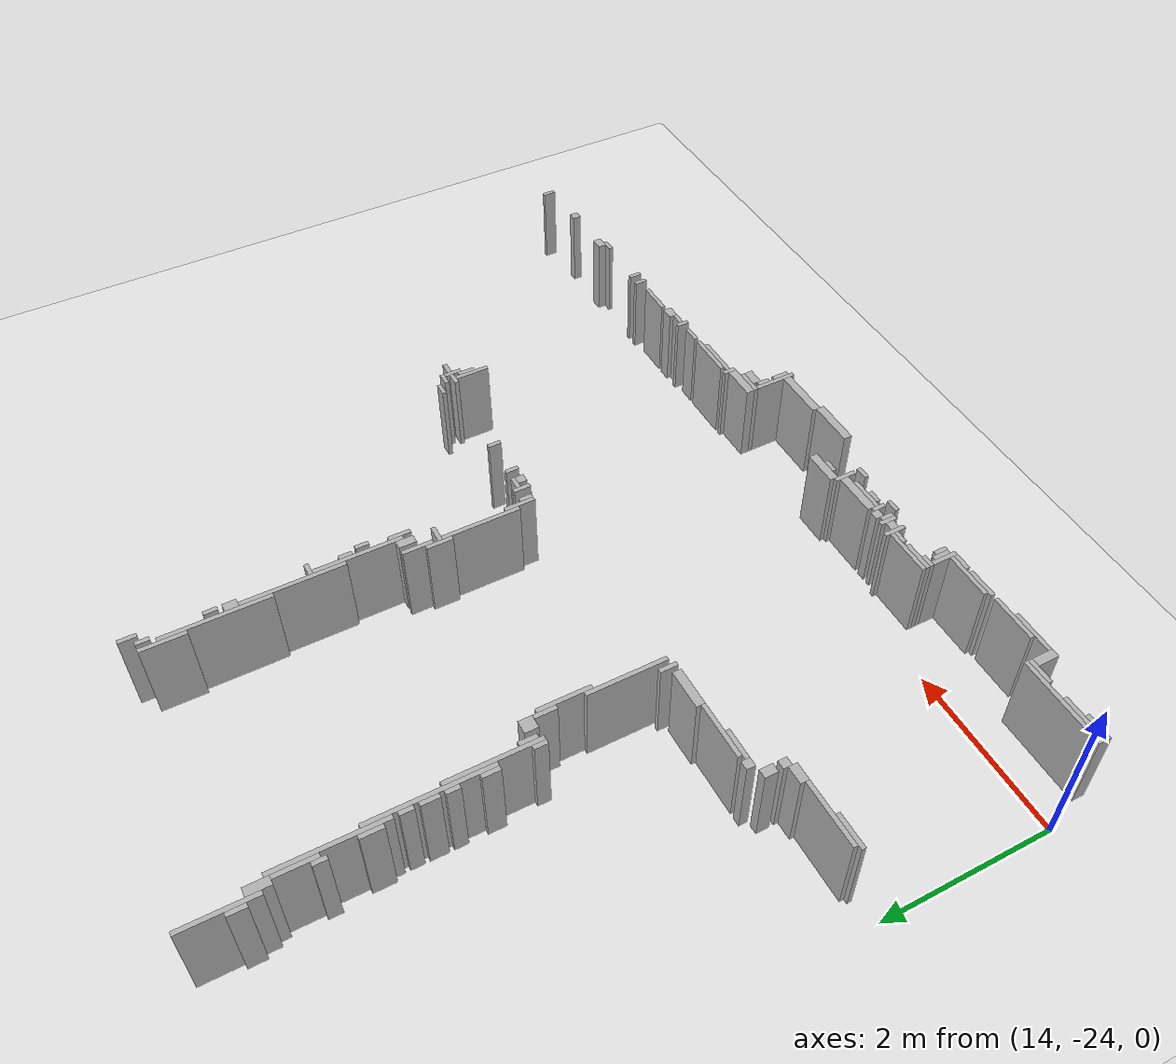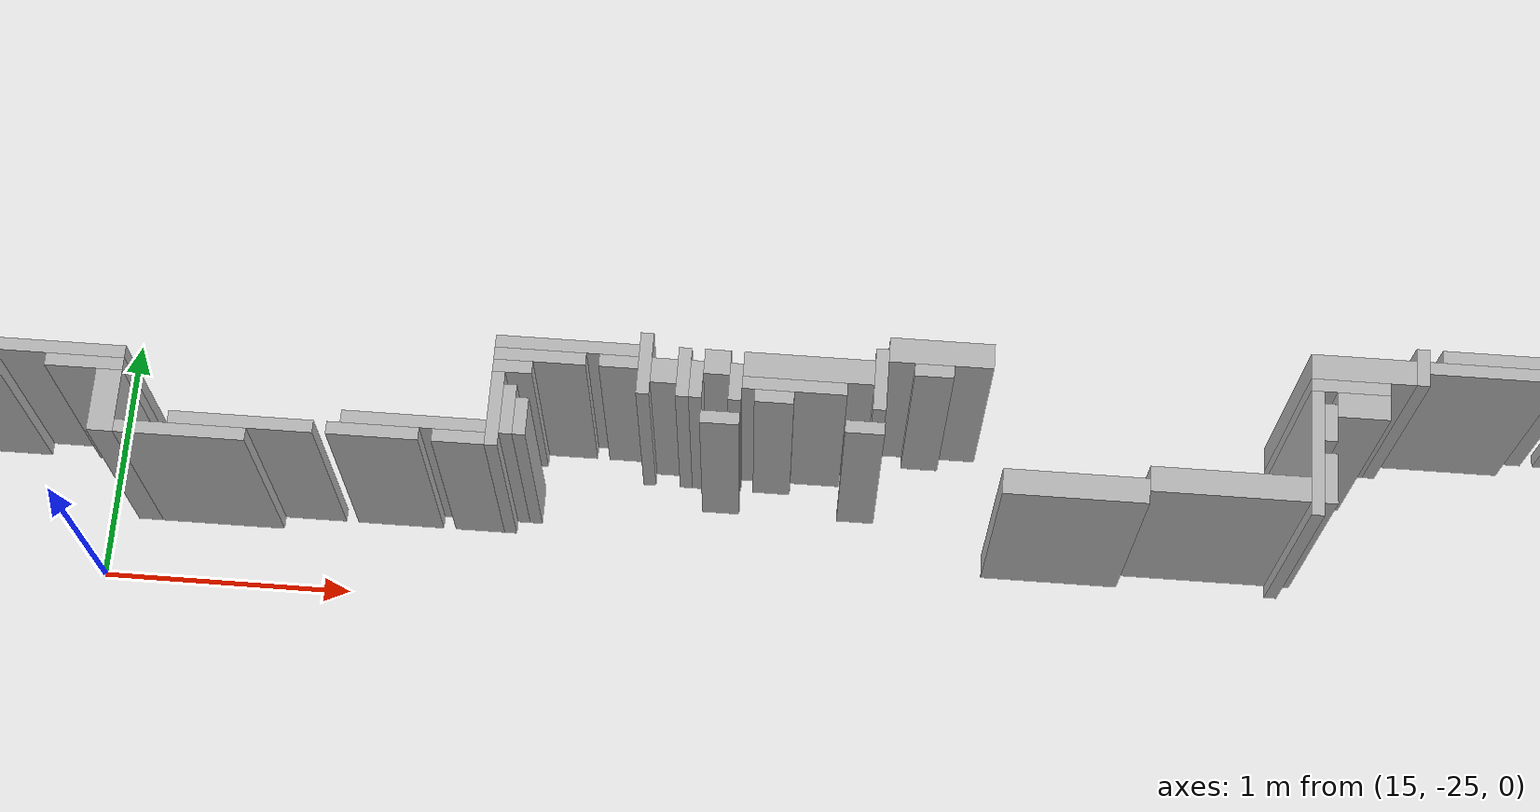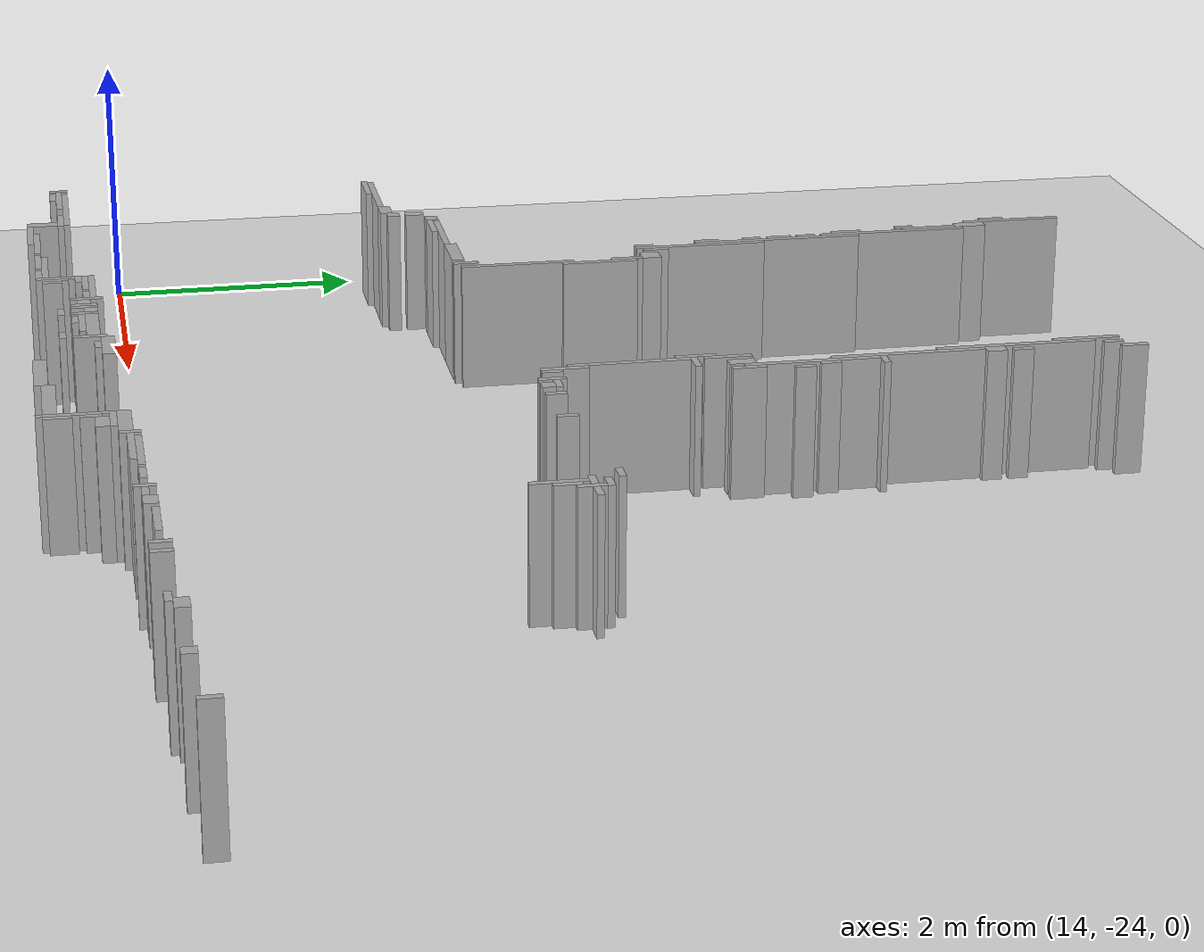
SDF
<sdf version="1.8">
 <world name="building">
  <model name="ground_plane">
   <static>true</static>
   <link name="link">
    <collision name="c"><geometry><plane><normal>0 0 1</normal><size>200 200</size></plane></geometry></collision>
    <visual name="v">
     <geometry><plane><normal>0 0 1</normal><size>200 200</size></plane></geometry>
     <material><ambient>0.9 0.9 0.9 1</ambient><diffuse>0.9 0.9 0.9 1</diffuse></material>
    </visual>
   </link>
  </model>
  <model name="walls">
   <static>true</static>
   <link name="wall_678">
    <pose>16.375 -16.750 0.500 0 0 0</pose>
    <collision name="c"><geometry><box><size>0.050 0.800 1.000</size></box></geometry></collision>
    <visual name="v">
     <geometry><box><size>0.050 0.800 1.000</size></box></geometry>
     <material><ambient>0.6 0.6 0.6 1</ambient><diffuse>0.7 0.7 0.7 1</diffuse></material>
    </visual>
   </link>
   <link name="wall_682">
    <pose>19.575 -16.850 0.500 0 0 0</pose>
    <collision name="c"><geometry><box><size>0.050 0.200 1.000</size></box></geometry></collision>
    <visual name="v">
     <geometry><box><size>0.050 0.200 1.000</size></box></geometry>
     <material><ambient>0.6 0.6 0.6 1</ambient><diffuse>0.7 0.7 0.7 1</diffuse></material>
    </visual>
   </link>
   <link name="wall_683">
    <pose>16.325 -16.900 0.500 0 0 0</pose>
    <collision name="c"><geometry><box><size>0.050 0.200 1.000</size></box></geometry></collision>
    <visual name="v">
     <geometry><box><size>0.050 0.200 1.000</size></box></geometry>
     <material><ambient>0.6 0.6 0.6 1</ambient><diffuse>0.7 0.7 0.7 1</diffuse></material>
    </visual>
   </link>
   <link name="wall_684">
    <pose>19.375 -17.150 0.500 0 0 0</pose>
    <collision name="c"><geometry><box><size>0.050 0.500 1.000</size></box></geometry></collision>
    <visual name="v">
     <geometry><box><size>0.050 0.500 1.000</size></box></geometry>
     <material><ambient>0.6 0.6 0.6 1</ambient><diffuse>0.7 0.7 0.7 1</diffuse></material>
    </visual>
   </link>
   <link name="wall_685">
    <pose>19.475 -16.975 0.500 0 0 0</pose>
    <collision name="c"><geometry><box><size>0.050 0.150 1.000</size></box></geometry></collision>
    <visual name="v">
     <geometry><box><size>0.050 0.150 1.000</size></box></geometry>
     <material><ambient>0.6 0.6 0.6 1</ambient><diffuse>0.7 0.7 0.7 1</diffuse></material>
    </visual>
   </link>
   <link name="wall_687">
    <pose>16.450 -17.125 0.500 0 0 0</pose>
    <collision name="c"><geometry><box><size>0.100 0.250 1.000</size></box></geometry></collision>
    <visual name="v">
     <geometry><box><size>0.100 0.250 1.000</size></box></geometry>
     <material><ambient>0.6 0.6 0.6 1</ambient><diffuse>0.7 0.7 0.7 1</diffuse></material>
    </visual>
   </link>
   <link name="wall_688">
    <pose>19.425 -17.700 0.500 0 0 0</pose>
    <collision name="c"><geometry><box><size>0.050 1.200 1.000</size></box></geometry></collision>
    <visual name="v">
     <geometry><box><size>0.050 1.200 1.000</size></box></geometry>
     <material><ambient>0.6 0.6 0.6 1</ambient><diffuse>0.7 0.7 0.7 1</diffuse></material>
    </visual>
   </link>
   <link name="wall_689">
    <pose>16.525 -17.800 0.500 0 0 0</pose>
    <collision name="c"><geometry><box><size>0.050 1.200 1.000</size></box></geometry></collision>
    <visual name="v">
     <geometry><box><size>0.050 1.200 1.000</size></box></geometry>
     <material><ambient>0.6 0.6 0.6 1</ambient><diffuse>0.7 0.7 0.7 1</diffuse></material>
    </visual>
   </link>
   <link name="wall_690">
    <pose>16.475 -17.475 0.500 0 0 0</pose>
    <collision name="c"><geometry><box><size>0.050 0.450 1.000</size></box></geometry></collision>
    <visual name="v">
     <geometry><box><size>0.050 0.450 1.000</size></box></geometry>
     <material><ambient>0.6 0.6 0.6 1</ambient><diffuse>0.7 0.7 0.7 1</diffuse></material>
    </visual>
   </link>
   <link name="wall_692">
    <pose>16.425 -17.675 0.500 0 0 0</pose>
    <collision name="c"><geometry><box><size>0.050 0.150 1.000</size></box></geometry></collision>
    <visual name="v">
     <geometry><box><size>0.050 0.150 1.000</size></box></geometry>
     <material><ambient>0.6 0.6 0.6 1</ambient><diffuse>0.7 0.7 0.7 1</diffuse></material>
    </visual>
   </link>
   <link name="wall_693">
    <pose>19.525 -17.675 0.500 0 0 0</pose>
    <collision name="c"><geometry><box><size>0.050 0.150 1.000</size></box></geometry></collision>
    <visual name="v">
     <geometry><box><size>0.050 0.150 1.000</size></box></geometry>
     <material><ambient>0.6 0.6 0.6 1</ambient><diffuse>0.7 0.7 0.7 1</diffuse></material>
    </visual>
   </link>
   <link name="wall_695">
    <pose>19.500 -17.875 0.500 0 0 0</pose>
    <collision name="c"><geometry><box><size>0.100 0.150 1.000</size></box></geometry></collision>
    <visual name="v">
     <geometry><box><size>0.100 0.150 1.000</size></box></geometry>
     <material><ambient>0.6 0.6 0.6 1</ambient><diffuse>0.7 0.7 0.7 1</diffuse></material>
    </visual>
   </link>
   <link name="wall_696">
    <pose>19.475 -18.525 0.500 0 0 0</pose>
    <collision name="c"><geometry><box><size>0.050 1.150 1.000</size></box></geometry></collision>
    <visual name="v">
     <geometry><box><size>0.050 1.150 1.000</size></box></geometry>
     <material><ambient>0.6 0.6 0.6 1</ambient><diffuse>0.7 0.7 0.7 1</diffuse></material>
    </visual>
   </link>
   <link name="wall_697">
    <pose>16.475 -18.175 0.500 0 0 0</pose>
    <collision name="c"><geometry><box><size>0.050 0.250 1.000</size></box></geometry></collision>
    <visual name="v">
     <geometry><box><size>0.050 0.250 1.000</size></box></geometry>
     <material><ambient>0.6 0.6 0.6 1</ambient><diffuse>0.7 0.7 0.7 1</diffuse></material>
    </visual>
   </link>
   <link name="wall_699">
    <pose>16.575 -18.775 0.500 0 0 0</pose>
    <collision name="c"><geometry><box><size>0.050 1.350 1.000</size></box></geometry></collision>
    <visual name="v">
     <geometry><box><size>0.050 1.350 1.000</size></box></geometry>
     <material><ambient>0.6 0.6 0.6 1</ambient><diffuse>0.7 0.7 0.7 1</diffuse></material>
    </visual>
   </link>
   <link name="wall_703">
    <pose>16.525 -18.525 0.500 0 0 0</pose>
    <collision name="c"><geometry><box><size>0.050 0.150 1.000</size></box></geometry></collision>
    <visual name="v">
     <geometry><box><size>0.050 0.150 1.000</size></box></geometry>
     <material><ambient>0.6 0.6 0.6 1</ambient><diffuse>0.7 0.7 0.7 1</diffuse></material>
    </visual>
   </link>
   <link name="wall_704">
    <pose>16.525 -18.750 0.500 0 0 0</pose>
    <collision name="c"><geometry><box><size>0.050 0.200 1.000</size></box></geometry></collision>
    <visual name="v">
     <geometry><box><size>0.050 0.200 1.000</size></box></geometry>
     <material><ambient>0.6 0.6 0.6 1</ambient><diffuse>0.7 0.7 0.7 1</diffuse></material>
    </visual>
   </link>
   <link name="wall_706">
    <pose>19.575 -18.725 0.500 0 0 0</pose>
    <collision name="c"><geometry><box><size>0.150 0.050 1.000</size></box></geometry></collision>
    <visual name="v">
     <geometry><box><size>0.150 0.050 1.000</size></box></geometry>
     <material><ambient>0.6 0.6 0.6 1</ambient><diffuse>0.7 0.7 0.7 1</diffuse></material>
    </visual>
   </link>
   <link name="wall_707">
    <pose>19.525 -19.250 0.500 0 0 0</pose>
    <collision name="c"><geometry><box><size>0.050 1.000 1.000</size></box></geometry></collision>
    <visual name="v">
     <geometry><box><size>0.050 1.000 1.000</size></box></geometry>
     <material><ambient>0.6 0.6 0.6 1</ambient><diffuse>0.7 0.7 0.7 1</diffuse></material>
    </visual>
   </link>
   <link name="wall_708">
    <pose>16.525 -18.975 0.500 0 0 0</pose>
    <collision name="c"><geometry><box><size>0.050 0.150 1.000</size></box></geometry></collision>
    <visual name="v">
     <geometry><box><size>0.050 0.150 1.000</size></box></geometry>
     <material><ambient>0.6 0.6 0.6 1</ambient><diffuse>0.7 0.7 0.7 1</diffuse></material>
    </visual>
   </link>
   <link name="wall_709">
    <pose>16.625 -19.425 0.500 0 0 0</pose>
    <collision name="c"><geometry><box><size>0.050 1.050 1.000</size></box></geometry></collision>
    <visual name="v">
     <geometry><box><size>0.050 1.050 1.000</size></box></geometry>
     <material><ambient>0.6 0.6 0.6 1</ambient><diffuse>0.7 0.7 0.7 1</diffuse></material>
    </visual>
   </link>
   <link name="wall_710">
    <pose>19.575 -19.125 0.500 0 0 0</pose>
    <collision name="c"><geometry><box><size>0.050 0.150 1.000</size></box></geometry></collision>
    <visual name="v">
     <geometry><box><size>0.050 0.150 1.000</size></box></geometry>
     <material><ambient>0.6 0.6 0.6 1</ambient><diffuse>0.7 0.7 0.7 1</diffuse></material>
    </visual>
   </link>
   <link name="wall_712">
    <pose>16.525 -19.350 0.500 0 0 0</pose>
    <collision name="c"><geometry><box><size>0.050 0.200 1.000</size></box></geometry></collision>
    <visual name="v">
     <geometry><box><size>0.050 0.200 1.000</size></box></geometry>
     <material><ambient>0.6 0.6 0.6 1</ambient><diffuse>0.7 0.7 0.7 1</diffuse></material>
    </visual>
   </link>
   <link name="wall_713">
    <pose>19.625 -19.325 0.500 0 0 0</pose>
    <collision name="c"><geometry><box><size>0.050 0.150 1.000</size></box></geometry></collision>
    <visual name="v">
     <geometry><box><size>0.050 0.150 1.000</size></box></geometry>
     <material><ambient>0.6 0.6 0.6 1</ambient><diffuse>0.7 0.7 0.7 1</diffuse></material>
    </visual>
   </link>
   <link name="wall_716">
    <pose>19.575 -19.725 0.500 0 0 0</pose>
    <collision name="c"><geometry><box><size>0.050 0.250 1.000</size></box></geometry></collision>
    <visual name="v">
     <geometry><box><size>0.050 0.250 1.000</size></box></geometry>
     <material><ambient>0.6 0.6 0.6 1</ambient><diffuse>0.7 0.7 0.7 1</diffuse></material>
    </visual>
   </link>
   <link name="wall_719">
    <pose>19.325 -19.825 0.500 0 0 0</pose>
    <collision name="c"><geometry><box><size>0.050 0.350 1.000</size></box></geometry></collision>
    <visual name="v">
     <geometry><box><size>0.050 0.350 1.000</size></box></geometry>
     <material><ambient>0.6 0.6 0.6 1</ambient><diffuse>0.7 0.7 0.7 1</diffuse></material>
    </visual>
   </link>
   <link name="wall_720">
    <pose>19.450 -19.750 0.500 0 0 0</pose>
    <collision name="c"><geometry><box><size>0.100 0.200 1.000</size></box></geometry></collision>
    <visual name="v">
     <geometry><box><size>0.100 0.200 1.000</size></box></geometry>
     <material><ambient>0.6 0.6 0.6 1</ambient><diffuse>0.7 0.7 0.7 1</diffuse></material>
    </visual>
   </link>
   <link name="wall_721">
    <pose>16.675 -19.800 0.500 0 0 0</pose>
    <collision name="c"><geometry><box><size>0.050 0.200 1.000</size></box></geometry></collision>
    <visual name="v">
     <geometry><box><size>0.050 0.200 1.000</size></box></geometry>
     <material><ambient>0.6 0.6 0.6 1</ambient><diffuse>0.7 0.7 0.7 1</diffuse></material>
    </visual>
   </link>
   <link name="wall_722">
    <pose>16.575 -19.875 0.500 0 0 0</pose>
    <collision name="c"><geometry><box><size>0.050 0.150 1.000</size></box></geometry></collision>
    <visual name="v">
     <geometry><box><size>0.050 0.150 1.000</size></box></geometry>
     <material><ambient>0.6 0.6 0.6 1</ambient><diffuse>0.7 0.7 0.7 1</diffuse></material>
    </visual>
   </link>
   <link name="wall_723">
    <pose>16.825 -19.875 0.500 0 0 0</pose>
    <collision name="c"><geometry><box><size>0.150 0.150 1.000</size></box></geometry></collision>
    <visual name="v">
     <geometry><box><size>0.150 0.150 1.000</size></box></geometry>
     <material><ambient>0.6 0.6 0.6 1</ambient><diffuse>0.7 0.7 0.7 1</diffuse></material>
    </visual>
   </link>
   <link name="wall_724">
    <pose>19.275 -20.050 0.500 0 0 0</pose>
    <collision name="c"><geometry><box><size>0.050 0.300 1.000</size></box></geometry></collision>
    <visual name="v">
     <geometry><box><size>0.050 0.300 1.000</size></box></geometry>
     <material><ambient>0.6 0.6 0.6 1</ambient><diffuse>0.7 0.7 0.7 1</diffuse></material>
    </visual>
   </link>
   <link name="wall_725">
    <pose>16.875 -20.075 0.500 0 0 0</pose>
    <collision name="c"><geometry><box><size>0.050 0.250 1.000</size></box></geometry></collision>
    <visual name="v">
     <geometry><box><size>0.050 0.250 1.000</size></box></geometry>
     <material><ambient>0.6 0.6 0.6 1</ambient><diffuse>0.7 0.7 0.7 1</diffuse></material>
    </visual>
   </link>
   <link name="wall_726">
    <pose>16.925 -20.300 0.500 0 0 0</pose>
    <collision name="c"><geometry><box><size>0.050 0.600 1.000</size></box></geometry></collision>
    <visual name="v">
     <geometry><box><size>0.050 0.600 1.000</size></box></geometry>
     <material><ambient>0.6 0.6 0.6 1</ambient><diffuse>0.7 0.7 0.7 1</diffuse></material>
    </visual>
   </link>
   <link name="wall_727">
    <pose>19.400 -20.075 0.500 0 0 0</pose>
    <collision name="c"><geometry><box><size>0.200 0.050 1.000</size></box></geometry></collision>
    <visual name="v">
     <geometry><box><size>0.200 0.050 1.000</size></box></geometry>
     <material><ambient>0.6 0.6 0.6 1</ambient><diffuse>0.7 0.7 0.7 1</diffuse></material>
    </visual>
   </link>
   <link name="wall_728">
    <pose>19.325 -20.550 0.500 0 0 0</pose>
    <collision name="c"><geometry><box><size>0.050 0.900 1.000</size></box></geometry></collision>
    <visual name="v">
     <geometry><box><size>0.050 0.900 1.000</size></box></geometry>
     <material><ambient>0.6 0.6 0.6 1</ambient><diffuse>0.7 0.7 0.7 1</diffuse></material>
    </visual>
   </link>
   <link name="wall_730">
    <pose>16.875 -20.950 0.500 0 0 0</pose>
    <collision name="c"><geometry><box><size>0.050 0.900 1.000</size></box></geometry></collision>
    <visual name="v">
     <geometry><box><size>0.050 0.900 1.000</size></box></geometry>
     <material><ambient>0.6 0.6 0.6 1</ambient><diffuse>0.7 0.7 0.7 1</diffuse></material>
    </visual>
   </link>
   <link name="wall_732">
    <pose>19.375 -21.025 0.500 0 0 0</pose>
    <collision name="c"><geometry><box><size>0.050 0.350 1.000</size></box></geometry></collision>
    <visual name="v">
     <geometry><box><size>0.050 0.350 1.000</size></box></geometry>
     <material><ambient>0.6 0.6 0.6 1</ambient><diffuse>0.7 0.7 0.7 1</diffuse></material>
    </visual>
   </link>
   <link name="wall_737">
    <pose>21.425 -21.025 0.500 0 0 0</pose>
    <collision name="c"><geometry><box><size>0.150 0.050 1.000</size></box></geometry></collision>
    <visual name="v">
     <geometry><box><size>0.150 0.050 1.000</size></box></geometry>
     <material><ambient>0.6 0.6 0.6 1</ambient><diffuse>0.7 0.7 0.7 1</diffuse></material>
    </visual>
   </link>
   <link name="wall_739">
    <pose>19.425 -21.125 0.500 0 0 0</pose>
    <collision name="c"><geometry><box><size>0.050 0.150 1.000</size></box></geometry></collision>
    <visual name="v">
     <geometry><box><size>0.050 0.150 1.000</size></box></geometry>
     <material><ambient>0.6 0.6 0.6 1</ambient><diffuse>0.7 0.7 0.7 1</diffuse></material>
    </visual>
   </link>
   <link name="wall_740">
    <pose>19.575 -21.150 0.500 0 0 0</pose>
    <collision name="c"><geometry><box><size>0.050 0.200 1.000</size></box></geometry></collision>
    <visual name="v">
     <geometry><box><size>0.050 0.200 1.000</size></box></geometry>
     <material><ambient>0.6 0.6 0.6 1</ambient><diffuse>0.7 0.7 0.7 1</diffuse></material>
    </visual>
   </link>
   <link name="wall_742">
    <pose>19.675 -21.125 0.500 0 0 0</pose>
    <collision name="c"><geometry><box><size>0.150 0.050 1.000</size></box></geometry></collision>
    <visual name="v">
     <geometry><box><size>0.150 0.050 1.000</size></box></geometry>
     <material><ambient>0.6 0.6 0.6 1</ambient><diffuse>0.7 0.7 0.7 1</diffuse></material>
    </visual>
   </link>
   <link name="wall_743">
    <pose>19.875 -21.175 0.500 0 0 0</pose>
    <collision name="c"><geometry><box><size>0.050 0.150 1.000</size></box></geometry></collision>
    <visual name="v">
     <geometry><box><size>0.050 0.150 1.000</size></box></geometry>
     <material><ambient>0.6 0.6 0.6 1</ambient><diffuse>0.7 0.7 0.7 1</diffuse></material>
    </visual>
   </link>
   <link name="wall_744">
    <pose>20.325 -21.175 0.500 0 0 0</pose>
    <collision name="c"><geometry><box><size>0.050 0.150 1.000</size></box></geometry></collision>
    <visual name="v">
     <geometry><box><size>0.050 0.150 1.000</size></box></geometry>
     <material><ambient>0.6 0.6 0.6 1</ambient><diffuse>0.7 0.7 0.7 1</diffuse></material>
    </visual>
   </link>
   <link name="wall_745">
    <pose>21.575 -21.125 0.500 0 0 0</pose>
    <collision name="c"><geometry><box><size>0.150 0.050 1.000</size></box></geometry></collision>
    <visual name="v">
     <geometry><box><size>0.150 0.050 1.000</size></box></geometry>
     <material><ambient>0.6 0.6 0.6 1</ambient><diffuse>0.7 0.7 0.7 1</diffuse></material>
    </visual>
   </link>
   <link name="wall_747">
    <pose>19.700 -21.200 0.500 0 0 0</pose>
    <collision name="c"><geometry><box><size>0.100 0.100 1.000</size></box></geometry></collision>
    <visual name="v">
     <geometry><box><size>0.100 0.100 1.000</size></box></geometry>
     <material><ambient>0.6 0.6 0.6 1</ambient><diffuse>0.7 0.7 0.7 1</diffuse></material>
    </visual>
   </link>
   <link name="wall_748">
    <pose>21.625 -21.250 0.500 0 0 0</pose>
    <collision name="c"><geometry><box><size>0.050 0.200 1.000</size></box></geometry></collision>
    <visual name="v">
     <geometry><box><size>0.050 0.200 1.000</size></box></geometry>
     <material><ambient>0.6 0.6 0.6 1</ambient><diffuse>0.7 0.7 0.7 1</diffuse></material>
    </visual>
   </link>
   <link name="wall_752">
    <pose>21.525 -21.225 0.500 0 0 0</pose>
    <collision name="c"><geometry><box><size>0.150 0.050 1.000</size></box></geometry></collision>
    <visual name="v">
     <geometry><box><size>0.150 0.050 1.000</size></box></geometry>
     <material><ambient>0.6 0.6 0.6 1</ambient><diffuse>0.7 0.7 0.7 1</diffuse></material>
    </visual>
   </link>
   <link name="wall_753">
    <pose>21.725 -21.225 0.500 0 0 0</pose>
    <collision name="c"><geometry><box><size>0.150 0.050 1.000</size></box></geometry></collision>
    <visual name="v">
     <geometry><box><size>0.150 0.050 1.000</size></box></geometry>
     <material><ambient>0.6 0.6 0.6 1</ambient><diffuse>0.7 0.7 0.7 1</diffuse></material>
    </visual>
   </link>
   <link name="wall_754">
    <pose>16.775 -21.350 0.500 0 0 0</pose>
    <collision name="c"><geometry><box><size>0.050 0.200 1.000</size></box></geometry></collision>
    <visual name="v">
     <geometry><box><size>0.050 0.200 1.000</size></box></geometry>
     <material><ambient>0.6 0.6 0.6 1</ambient><diffuse>0.7 0.7 0.7 1</diffuse></material>
    </visual>
   </link>
   <link name="wall_755">
    <pose>21.525 -21.450 0.500 0 0 0</pose>
    <collision name="c"><geometry><box><size>0.050 0.400 1.000</size></box></geometry></collision>
    <visual name="v">
     <geometry><box><size>0.050 0.400 1.000</size></box></geometry>
     <material><ambient>0.6 0.6 0.6 1</ambient><diffuse>0.7 0.7 0.7 1</diffuse></material>
    </visual>
   </link>
   <link name="wall_756">
    <pose>21.575 -21.400 0.500 0 0 0</pose>
    <collision name="c"><geometry><box><size>0.050 0.200 1.000</size></box></geometry></collision>
    <visual name="v">
     <geometry><box><size>0.050 0.200 1.000</size></box></geometry>
     <material><ambient>0.6 0.6 0.6 1</ambient><diffuse>0.7 0.7 0.7 1</diffuse></material>
    </visual>
   </link>
   <link name="wall_757">
    <pose>16.475 -21.400 0.500 0 0 0</pose>
    <collision name="c"><geometry><box><size>0.450 0.100 1.000</size></box></geometry></collision>
    <visual name="v">
     <geometry><box><size>0.450 0.100 1.000</size></box></geometry>
     <material><ambient>0.6 0.6 0.6 1</ambient><diffuse>0.7 0.7 0.7 1</diffuse></material>
    </visual>
   </link>
   <link name="wall_758">
    <pose>15.500 -21.450 0.500 0 0 0</pose>
    <collision name="c"><geometry><box><size>0.100 0.100 1.000</size></box></geometry></collision>
    <visual name="v">
     <geometry><box><size>0.100 0.100 1.000</size></box></geometry>
     <material><ambient>0.6 0.6 0.6 1</ambient><diffuse>0.7 0.7 0.7 1</diffuse></material>
    </visual>
   </link>
   <link name="wall_759">
    <pose>15.925 -21.425 0.500 0 0 0</pose>
    <collision name="c"><geometry><box><size>0.650 0.050 1.000</size></box></geometry></collision>
    <visual name="v">
     <geometry><box><size>0.650 0.050 1.000</size></box></geometry>
     <material><ambient>0.6 0.6 0.6 1</ambient><diffuse>0.7 0.7 0.7 1</diffuse></material>
    </visual>
   </link>
   <link name="wall_760">
    <pose>15.725 -21.475 0.500 0 0 0</pose>
    <collision name="c"><geometry><box><size>0.350 0.050 1.000</size></box></geometry></collision>
    <visual name="v">
     <geometry><box><size>0.350 0.050 1.000</size></box></geometry>
     <material><ambient>0.6 0.6 0.6 1</ambient><diffuse>0.7 0.7 0.7 1</diffuse></material>
    </visual>
   </link>
   <link name="wall_761">
    <pose>15.350 -21.575 0.500 0 0 0</pose>
    <collision name="c"><geometry><box><size>0.100 0.150 1.000</size></box></geometry></collision>
    <visual name="v">
     <geometry><box><size>0.100 0.150 1.000</size></box></geometry>
     <material><ambient>0.6 0.6 0.6 1</ambient><diffuse>0.7 0.7 0.7 1</diffuse></material>
    </visual>
   </link>
   <link name="wall_765">
    <pose>15.350 -21.750 0.500 0 0 0</pose>
    <collision name="c"><geometry><box><size>0.100 0.100 1.000</size></box></geometry></collision>
    <visual name="v">
     <geometry><box><size>0.100 0.100 1.000</size></box></geometry>
     <material><ambient>0.6 0.6 0.6 1</ambient><diffuse>0.7 0.7 0.7 1</diffuse></material>
    </visual>
   </link>
   <link name="wall_766">
    <pose>15.200 -21.800 0.500 0 0 0</pose>
    <collision name="c"><geometry><box><size>0.200 0.100 1.000</size></box></geometry></collision>
    <visual name="v">
     <geometry><box><size>0.200 0.100 1.000</size></box></geometry>
     <material><ambient>0.6 0.6 0.6 1</ambient><diffuse>0.7 0.7 0.7 1</diffuse></material>
    </visual>
   </link>
   <link name="wall_773">
    <pose>14.725 -21.825 0.500 0 0 0</pose>
    <collision name="c"><geometry><box><size>0.750 0.050 1.000</size></box></geometry></collision>
    <visual name="v">
     <geometry><box><size>0.750 0.050 1.000</size></box></geometry>
     <material><ambient>0.6 0.6 0.6 1</ambient><diffuse>0.7 0.7 0.7 1</diffuse></material>
    </visual>
   </link>
   <link name="wall_779">
    <pose>14.500 -21.875 0.500 0 0 0</pose>
    <collision name="c"><geometry><box><size>0.400 0.050 1.000</size></box></geometry></collision>
    <visual name="v">
     <geometry><box><size>0.400 0.050 1.000</size></box></geometry>
     <material><ambient>0.6 0.6 0.6 1</ambient><diffuse>0.7 0.7 0.7 1</diffuse></material>
    </visual>
   </link>
   <link name="wall_905">
    <pose>24.325 -23.875 0.500 0 0 0</pose>
    <collision name="c"><geometry><box><size>0.050 0.150 1.000</size></box></geometry></collision>
    <visual name="v">
     <geometry><box><size>0.050 0.150 1.000</size></box></geometry>
     <material><ambient>0.6 0.6 0.6 1</ambient><diffuse>0.7 0.7 0.7 1</diffuse></material>
    </visual>
   </link>
   <link name="wall_906">
    <pose>23.025 -23.950 0.500 0 0 0</pose>
    <collision name="c"><geometry><box><size>0.150 0.100 1.000</size></box></geometry></collision>
    <visual name="v">
     <geometry><box><size>0.150 0.100 1.000</size></box></geometry>
     <material><ambient>0.6 0.6 0.6 1</ambient><diffuse>0.7 0.7 0.7 1</diffuse></material>
    </visual>
   </link>
   <link name="wall_907">
    <pose>23.700 -23.950 0.500 0 0 0</pose>
    <collision name="c"><geometry><box><size>0.100 0.100 1.000</size></box></geometry></collision>
    <visual name="v">
     <geometry><box><size>0.100 0.100 1.000</size></box></geometry>
     <material><ambient>0.6 0.6 0.6 1</ambient><diffuse>0.7 0.7 0.7 1</diffuse></material>
    </visual>
   </link>
   <link name="wall_908">
    <pose>22.075 -24.025 0.500 0 0 0</pose>
    <collision name="c"><geometry><box><size>0.050 0.150 1.000</size></box></geometry></collision>
    <visual name="v">
     <geometry><box><size>0.050 0.150 1.000</size></box></geometry>
     <material><ambient>0.6 0.6 0.6 1</ambient><diffuse>0.7 0.7 0.7 1</diffuse></material>
    </visual>
   </link>
   <link name="wall_909">
    <pose>22.225 -24.025 0.500 0 0 0</pose>
    <collision name="c"><geometry><box><size>0.050 0.150 1.000</size></box></geometry></collision>
    <visual name="v">
     <geometry><box><size>0.050 0.150 1.000</size></box></geometry>
     <material><ambient>0.6 0.6 0.6 1</ambient><diffuse>0.7 0.7 0.7 1</diffuse></material>
    </visual>
   </link>
   <link name="wall_910">
    <pose>21.125 -24.075 0.500 0 0 0</pose>
    <collision name="c"><geometry><box><size>0.050 0.150 1.000</size></box></geometry></collision>
    <visual name="v">
     <geometry><box><size>0.050 0.150 1.000</size></box></geometry>
     <material><ambient>0.6 0.6 0.6 1</ambient><diffuse>0.7 0.7 0.7 1</diffuse></material>
    </visual>
   </link>
   <link name="wall_911">
    <pose>21.375 -24.050 0.500 0 0 0</pose>
    <collision name="c"><geometry><box><size>0.150 0.100 1.000</size></box></geometry></collision>
    <visual name="v">
     <geometry><box><size>0.150 0.100 1.000</size></box></geometry>
     <material><ambient>0.6 0.6 0.6 1</ambient><diffuse>0.7 0.7 0.7 1</diffuse></material>
    </visual>
   </link>
   <link name="wall_912">
    <pose>21.700 -24.025 0.500 0 0 0</pose>
    <collision name="c"><geometry><box><size>0.400 0.050 1.000</size></box></geometry></collision>
    <visual name="v">
     <geometry><box><size>0.400 0.050 1.000</size></box></geometry>
     <material><ambient>0.6 0.6 0.6 1</ambient><diffuse>0.7 0.7 0.7 1</diffuse></material>
    </visual>
   </link>
   <link name="wall_913">
    <pose>22.925 -24.025 0.500 0 0 0</pose>
    <collision name="c"><geometry><box><size>0.150 0.050 1.000</size></box></geometry></collision>
    <visual name="v">
     <geometry><box><size>0.150 0.050 1.000</size></box></geometry>
     <material><ambient>0.6 0.6 0.6 1</ambient><diffuse>0.7 0.7 0.7 1</diffuse></material>
    </visual>
   </link>
   <link name="wall_914">
    <pose>20.125 -24.125 0.500 0 0 0</pose>
    <collision name="c"><geometry><box><size>0.050 0.150 1.000</size></box></geometry></collision>
    <visual name="v">
     <geometry><box><size>0.050 0.150 1.000</size></box></geometry>
     <material><ambient>0.6 0.6 0.6 1</ambient><diffuse>0.7 0.7 0.7 1</diffuse></material>
    </visual>
   </link>
   <link name="wall_915">
    <pose>20.475 -24.075 0.500 0 0 0</pose>
    <collision name="c"><geometry><box><size>0.550 0.050 1.000</size></box></geometry></collision>
    <visual name="v">
     <geometry><box><size>0.550 0.050 1.000</size></box></geometry>
     <material><ambient>0.6 0.6 0.6 1</ambient><diffuse>0.7 0.7 0.7 1</diffuse></material>
    </visual>
   </link>
   <link name="wall_916">
    <pose>20.900 -24.075 0.500 0 0 0</pose>
    <collision name="c"><geometry><box><size>0.200 0.050 1.000</size></box></geometry></collision>
    <visual name="v">
     <geometry><box><size>0.200 0.050 1.000</size></box></geometry>
     <material><ambient>0.6 0.6 0.6 1</ambient><diffuse>0.7 0.7 0.7 1</diffuse></material>
    </visual>
   </link>
   <link name="wall_917">
    <pose>21.225 -24.075 0.500 0 0 0</pose>
    <collision name="c"><geometry><box><size>0.150 0.050 1.000</size></box></geometry></collision>
    <visual name="v">
     <geometry><box><size>0.150 0.050 1.000</size></box></geometry>
     <material><ambient>0.6 0.6 0.6 1</ambient><diffuse>0.7 0.7 0.7 1</diffuse></material>
    </visual>
   </link>
   <link name="wall_918">
    <pose>19.900 -24.150 0.500 0 0 0</pose>
    <collision name="c"><geometry><box><size>0.400 0.100 1.000</size></box></geometry></collision>
    <visual name="v">
     <geometry><box><size>0.400 0.100 1.000</size></box></geometry>
     <material><ambient>0.6 0.6 0.6 1</ambient><diffuse>0.7 0.7 0.7 1</diffuse></material>
    </visual>
   </link>
   <link name="wall_919">
    <pose>20.400 -24.125 0.500 0 0 0</pose>
    <collision name="c"><geometry><box><size>0.500 0.050 1.000</size></box></geometry></collision>
    <visual name="v">
     <geometry><box><size>0.500 0.050 1.000</size></box></geometry>
     <material><ambient>0.6 0.6 0.6 1</ambient><diffuse>0.7 0.7 0.7 1</diffuse></material>
    </visual>
   </link>
   <link name="wall_920">
    <pose>18.300 -24.200 0.500 0 0 0</pose>
    <collision name="c"><geometry><box><size>0.400 0.100 1.000</size></box></geometry></collision>
    <visual name="v">
     <geometry><box><size>0.400 0.100 1.000</size></box></geometry>
     <material><ambient>0.6 0.6 0.6 1</ambient><diffuse>0.7 0.7 0.7 1</diffuse></material>
    </visual>
   </link>
   <link name="wall_922">
    <pose>17.175 -24.325 0.500 0 0 0</pose>
    <collision name="c"><geometry><box><size>0.050 0.250 1.000</size></box></geometry></collision>
    <visual name="v">
     <geometry><box><size>0.050 0.250 1.000</size></box></geometry>
     <material><ambient>0.6 0.6 0.6 1</ambient><diffuse>0.7 0.7 0.7 1</diffuse></material>
    </visual>
   </link>
   <link name="wall_923">
    <pose>18.075 -24.325 0.500 0 0 0</pose>
    <collision name="c"><geometry><box><size>0.050 0.250 1.000</size></box></geometry></collision>
    <visual name="v">
     <geometry><box><size>0.050 0.250 1.000</size></box></geometry>
     <material><ambient>0.6 0.6 0.6 1</ambient><diffuse>0.7 0.7 0.7 1</diffuse></material>
    </visual>
   </link>
   <link name="wall_924">
    <pose>19.850 -24.225 0.500 0 0 0</pose>
    <collision name="c"><geometry><box><size>0.300 0.050 1.000</size></box></geometry></collision>
    <visual name="v">
     <geometry><box><size>0.300 0.050 1.000</size></box></geometry>
     <material><ambient>0.6 0.6 0.6 1</ambient><diffuse>0.7 0.7 0.7 1</diffuse></material>
    </visual>
   </link>
   <link name="wall_927">
    <pose>16.875 -24.275 0.500 0 0 0</pose>
    <collision name="c"><geometry><box><size>0.550 0.050 1.000</size></box></geometry></collision>
    <visual name="v">
     <geometry><box><size>0.550 0.050 1.000</size></box></geometry>
     <material><ambient>0.6 0.6 0.6 1</ambient><diffuse>0.7 0.7 0.7 1</diffuse></material>
    </visual>
   </link>
   <link name="wall_928">
    <pose>17.325 -24.350 0.500 0 0 0</pose>
    <collision name="c"><geometry><box><size>0.050 0.200 1.000</size></box></geometry></collision>
    <visual name="v">
     <geometry><box><size>0.050 0.200 1.000</size></box></geometry>
     <material><ambient>0.6 0.6 0.6 1</ambient><diffuse>0.7 0.7 0.7 1</diffuse></material>
    </visual>
   </link>
   <link name="wall_929">
    <pose>17.450 -24.300 0.500 0 0 0</pose>
    <collision name="c"><geometry><box><size>0.100 0.100 1.000</size></box></geometry></collision>
    <visual name="v">
     <geometry><box><size>0.100 0.100 1.000</size></box></geometry>
     <material><ambient>0.6 0.6 0.6 1</ambient><diffuse>0.7 0.7 0.7 1</diffuse></material>
    </visual>
   </link>
   <link name="wall_930">
    <pose>17.800 -24.300 0.500 0 0 0</pose>
    <collision name="c"><geometry><box><size>0.500 0.100 1.000</size></box></geometry></collision>
    <visual name="v">
     <geometry><box><size>0.500 0.100 1.000</size></box></geometry>
     <material><ambient>0.6 0.6 0.6 1</ambient><diffuse>0.7 0.7 0.7 1</diffuse></material>
    </visual>
   </link>
   <link name="wall_931">
    <pose>18.275 -24.275 0.500 0 0 0</pose>
    <collision name="c"><geometry><box><size>0.150 0.050 1.000</size></box></geometry></collision>
    <visual name="v">
     <geometry><box><size>0.150 0.050 1.000</size></box></geometry>
     <material><ambient>0.6 0.6 0.6 1</ambient><diffuse>0.7 0.7 0.7 1</diffuse></material>
    </visual>
   </link>
   <link name="wall_932">
    <pose>19.725 -24.500 0.500 0 0 0</pose>
    <collision name="c"><geometry><box><size>0.050 0.500 1.000</size></box></geometry></collision>
    <visual name="v">
     <geometry><box><size>0.050 0.500 1.000</size></box></geometry>
     <material><ambient>0.6 0.6 0.6 1</ambient><diffuse>0.7 0.7 0.7 1</diffuse></material>
    </visual>
   </link>
   <link name="wall_933">
    <pose>19.900 -24.300 0.500 0 0 0</pose>
    <collision name="c"><geometry><box><size>0.200 0.100 1.000</size></box></geometry></collision>
    <visual name="v">
     <geometry><box><size>0.200 0.100 1.000</size></box></geometry>
     <material><ambient>0.6 0.6 0.6 1</ambient><diffuse>0.7 0.7 0.7 1</diffuse></material>
    </visual>
   </link>
   <link name="wall_936">
    <pose>16.775 -24.325 0.500 0 0 0</pose>
    <collision name="c"><geometry><box><size>0.350 0.050 1.000</size></box></geometry></collision>
    <visual name="v">
     <geometry><box><size>0.350 0.050 1.000</size></box></geometry>
     <material><ambient>0.6 0.6 0.6 1</ambient><diffuse>0.7 0.7 0.7 1</diffuse></material>
    </visual>
   </link>
   <link name="wall_937">
    <pose>17.075 -24.325 0.500 0 0 0</pose>
    <collision name="c"><geometry><box><size>0.150 0.050 1.000</size></box></geometry></collision>
    <visual name="v">
     <geometry><box><size>0.150 0.050 1.000</size></box></geometry>
     <material><ambient>0.6 0.6 0.6 1</ambient><diffuse>0.7 0.7 0.7 1</diffuse></material>
    </visual>
   </link>
   <link name="wall_938">
    <pose>17.250 -24.350 0.500 0 0 0</pose>
    <collision name="c"><geometry><box><size>0.100 0.100 1.000</size></box></geometry></collision>
    <visual name="v">
     <geometry><box><size>0.100 0.100 1.000</size></box></geometry>
     <material><ambient>0.6 0.6 0.6 1</ambient><diffuse>0.7 0.7 0.7 1</diffuse></material>
    </visual>
   </link>
   <link name="wall_939">
    <pose>17.375 -24.375 0.500 0 0 0</pose>
    <collision name="c"><geometry><box><size>0.050 0.150 1.000</size></box></geometry></collision>
    <visual name="v">
     <geometry><box><size>0.050 0.150 1.000</size></box></geometry>
     <material><ambient>0.6 0.6 0.6 1</ambient><diffuse>0.7 0.7 0.7 1</diffuse></material>
    </visual>
   </link>
   <link name="wall_940">
    <pose>17.525 -24.375 0.500 0 0 0</pose>
    <collision name="c"><geometry><box><size>0.050 0.150 1.000</size></box></geometry></collision>
    <visual name="v">
     <geometry><box><size>0.050 0.150 1.000</size></box></geometry>
     <material><ambient>0.6 0.6 0.6 1</ambient><diffuse>0.7 0.7 0.7 1</diffuse></material>
    </visual>
   </link>
   <link name="wall_941">
    <pose>19.775 -24.375 0.500 0 0 0</pose>
    <collision name="c"><geometry><box><size>0.050 0.150 1.000</size></box></geometry></collision>
    <visual name="v">
     <geometry><box><size>0.050 0.150 1.000</size></box></geometry>
     <material><ambient>0.6 0.6 0.6 1</ambient><diffuse>0.7 0.7 0.7 1</diffuse></material>
    </visual>
   </link>
   <link name="wall_945">
    <pose>16.675 -24.375 0.500 0 0 0</pose>
    <collision name="c"><geometry><box><size>0.150 0.050 1.000</size></box></geometry></collision>
    <visual name="v">
     <geometry><box><size>0.150 0.050 1.000</size></box></geometry>
     <material><ambient>0.6 0.6 0.6 1</ambient><diffuse>0.7 0.7 0.7 1</diffuse></material>
    </visual>
   </link>
   <link name="wall_946">
    <pose>17.750 -24.375 0.500 0 0 0</pose>
    <collision name="c"><geometry><box><size>0.400 0.050 1.000</size></box></geometry></collision>
    <visual name="v">
     <geometry><box><size>0.400 0.050 1.000</size></box></geometry>
     <material><ambient>0.6 0.6 0.6 1</ambient><diffuse>0.7 0.7 0.7 1</diffuse></material>
    </visual>
   </link>
   <link name="wall_950">
    <pose>14.175 -24.475 0.500 0 0 0</pose>
    <collision name="c"><geometry><box><size>0.050 0.150 1.000</size></box></geometry></collision>
    <visual name="v">
     <geometry><box><size>0.050 0.150 1.000</size></box></geometry>
     <material><ambient>0.6 0.6 0.6 1</ambient><diffuse>0.7 0.7 0.7 1</diffuse></material>
    </visual>
   </link>
   <link name="wall_951">
    <pose>14.725 -24.425 0.500 0 0 0</pose>
    <collision name="c"><geometry><box><size>0.950 0.050 1.000</size></box></geometry></collision>
    <visual name="v">
     <geometry><box><size>0.950 0.050 1.000</size></box></geometry>
     <material><ambient>0.6 0.6 0.6 1</ambient><diffuse>0.7 0.7 0.7 1</diffuse></material>
    </visual>
   </link>
   <link name="wall_952">
    <pose>16.625 -24.550 0.500 0 0 0</pose>
    <collision name="c"><geometry><box><size>0.050 0.300 1.000</size></box></geometry></collision>
    <visual name="v">
     <geometry><box><size>0.050 0.300 1.000</size></box></geometry>
     <material><ambient>0.6 0.6 0.6 1</ambient><diffuse>0.7 0.7 0.7 1</diffuse></material>
    </visual>
   </link>
   <link name="wall_953">
    <pose>17.675 -24.425 0.500 0 0 0</pose>
    <collision name="c"><geometry><box><size>0.150 0.050 1.000</size></box></geometry></collision>
    <visual name="v">
     <geometry><box><size>0.150 0.050 1.000</size></box></geometry>
     <material><ambient>0.6 0.6 0.6 1</ambient><diffuse>0.7 0.7 0.7 1</diffuse></material>
    </visual>
   </link>
   <link name="wall_957">
    <pose>14.450 -24.475 0.500 0 0 0</pose>
    <collision name="c"><geometry><box><size>0.500 0.050 1.000</size></box></geometry></collision>
    <visual name="v">
     <geometry><box><size>0.500 0.050 1.000</size></box></geometry>
     <material><ambient>0.6 0.6 0.6 1</ambient><diffuse>0.7 0.7 0.7 1</diffuse></material>
    </visual>
   </link>
   <link name="wall_958">
    <pose>15.050 -24.475 0.500 0 0 0</pose>
    <collision name="c"><geometry><box><size>0.300 0.050 1.000</size></box></geometry></collision>
    <visual name="v">
     <geometry><box><size>0.300 0.050 1.000</size></box></geometry>
     <material><ambient>0.6 0.6 0.6 1</ambient><diffuse>0.7 0.7 0.7 1</diffuse></material>
    </visual>
   </link>
   <link name="wall_959">
    <pose>16.675 -24.550 0.500 0 0 0</pose>
    <collision name="c"><geometry><box><size>0.050 0.200 1.000</size></box></geometry></collision>
    <visual name="v">
     <geometry><box><size>0.050 0.200 1.000</size></box></geometry>
     <material><ambient>0.6 0.6 0.6 1</ambient><diffuse>0.7 0.7 0.7 1</diffuse></material>
    </visual>
   </link>
   <link name="wall_965">
    <pose>14.350 -24.525 0.500 0 0 0</pose>
    <collision name="c"><geometry><box><size>0.200 0.050 1.000</size></box></geometry></collision>
    <visual name="v">
     <geometry><box><size>0.200 0.050 1.000</size></box></geometry>
     <material><ambient>0.6 0.6 0.6 1</ambient><diffuse>0.7 0.7 0.7 1</diffuse></material>
    </visual>
   </link>
   <link name="wall_966">
    <pose>15.150 -24.625 0.500 0 0 0</pose>
    <collision name="c"><geometry><box><size>0.100 0.250 1.000</size></box></geometry></collision>
    <visual name="v">
     <geometry><box><size>0.100 0.250 1.000</size></box></geometry>
     <material><ambient>0.6 0.6 0.6 1</ambient><diffuse>0.7 0.7 0.7 1</diffuse></material>
    </visual>
   </link>
   <link name="wall_967">
    <pose>16.725 -24.575 0.500 0 0 0</pose>
    <collision name="c"><geometry><box><size>0.050 0.150 1.000</size></box></geometry></collision>
    <visual name="v">
     <geometry><box><size>0.050 0.150 1.000</size></box></geometry>
     <material><ambient>0.6 0.6 0.6 1</ambient><diffuse>0.7 0.7 0.7 1</diffuse></material>
    </visual>
   </link>
   <link name="wall_968">
    <pose>17.475 -24.525 0.500 0 0 0</pose>
    <collision name="c"><geometry><box><size>0.150 0.050 1.000</size></box></geometry></collision>
    <visual name="v">
     <geometry><box><size>0.150 0.050 1.000</size></box></geometry>
     <material><ambient>0.6 0.6 0.6 1</ambient><diffuse>0.7 0.7 0.7 1</diffuse></material>
    </visual>
   </link>
   <link name="wall_969">
    <pose>18.025 -24.525 0.500 0 0 0</pose>
    <collision name="c"><geometry><box><size>0.150 0.050 1.000</size></box></geometry></collision>
    <visual name="v">
     <geometry><box><size>0.150 0.050 1.000</size></box></geometry>
     <material><ambient>0.6 0.6 0.6 1</ambient><diffuse>0.7 0.7 0.7 1</diffuse></material>
    </visual>
   </link>
   <link name="wall_970">
    <pose>19.775 -24.600 0.500 0 0 0</pose>
    <collision name="c"><geometry><box><size>0.050 0.200 1.000</size></box></geometry></collision>
    <visual name="v">
     <geometry><box><size>0.050 0.200 1.000</size></box></geometry>
     <material><ambient>0.6 0.6 0.6 1</ambient><diffuse>0.7 0.7 0.7 1</diffuse></material>
    </visual>
   </link>
   <link name="wall_991">
    <pose>16.325 -24.625 0.500 0 0 0</pose>
    <collision name="c"><geometry><box><size>0.550 0.050 1.000</size></box></geometry></collision>
    <visual name="v">
     <geometry><box><size>0.550 0.050 1.000</size></box></geometry>
     <material><ambient>0.6 0.6 0.6 1</ambient><diffuse>0.7 0.7 0.7 1</diffuse></material>
    </visual>
   </link>
   <link name="wall_992">
    <pose>19.400 -24.650 0.500 0 0 0</pose>
    <collision name="c"><geometry><box><size>0.600 0.100 1.000</size></box></geometry></collision>
    <visual name="v">
     <geometry><box><size>0.600 0.100 1.000</size></box></geometry>
     <material><ambient>0.6 0.6 0.6 1</ambient><diffuse>0.7 0.7 0.7 1</diffuse></material>
    </visual>
   </link>
   <link name="wall_1003">
    <pose>15.675 -24.675 0.500 0 0 0</pose>
    <collision name="c"><geometry><box><size>0.550 0.050 1.000</size></box></geometry></collision>
    <visual name="v">
     <geometry><box><size>0.550 0.050 1.000</size></box></geometry>
     <material><ambient>0.6 0.6 0.6 1</ambient><diffuse>0.7 0.7 0.7 1</diffuse></material>
    </visual>
   </link>
   <link name="wall_1004">
    <pose>16.175 -24.675 0.500 0 0 0</pose>
    <collision name="c"><geometry><box><size>0.350 0.050 1.000</size></box></geometry></collision>
    <visual name="v">
     <geometry><box><size>0.350 0.050 1.000</size></box></geometry>
     <material><ambient>0.6 0.6 0.6 1</ambient><diffuse>0.7 0.7 0.7 1</diffuse></material>
    </visual>
   </link>
   <link name="wall_1005">
    <pose>16.500 -24.675 0.500 0 0 0</pose>
    <collision name="c"><geometry><box><size>0.200 0.050 1.000</size></box></geometry></collision>
    <visual name="v">
     <geometry><box><size>0.200 0.050 1.000</size></box></geometry>
     <material><ambient>0.6 0.6 0.6 1</ambient><diffuse>0.7 0.7 0.7 1</diffuse></material>
    </visual>
   </link>
   <link name="wall_1006">
    <pose>18.825 -24.700 0.500 0 0 0</pose>
    <collision name="c"><geometry><box><size>0.550 0.100 1.000</size></box></geometry></collision>
    <visual name="v">
     <geometry><box><size>0.550 0.100 1.000</size></box></geometry>
     <material><ambient>0.6 0.6 0.6 1</ambient><diffuse>0.7 0.7 0.7 1</diffuse></material>
    </visual>
   </link>
   <link name="wall_1010">
    <pose>15.450 -24.725 0.500 0 0 0</pose>
    <collision name="c"><geometry><box><size>0.500 0.050 1.000</size></box></geometry></collision>
    <visual name="v">
     <geometry><box><size>0.500 0.050 1.000</size></box></geometry>
     <material><ambient>0.6 0.6 0.6 1</ambient><diffuse>0.7 0.7 0.7 1</diffuse></material>
    </visual>
   </link>
  </model>
 </world>
</sdf>
